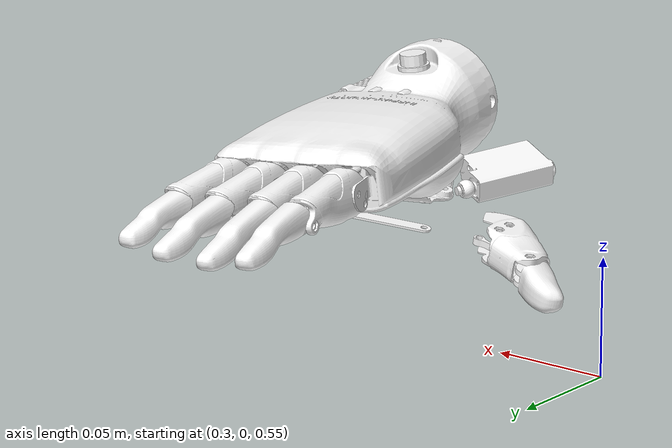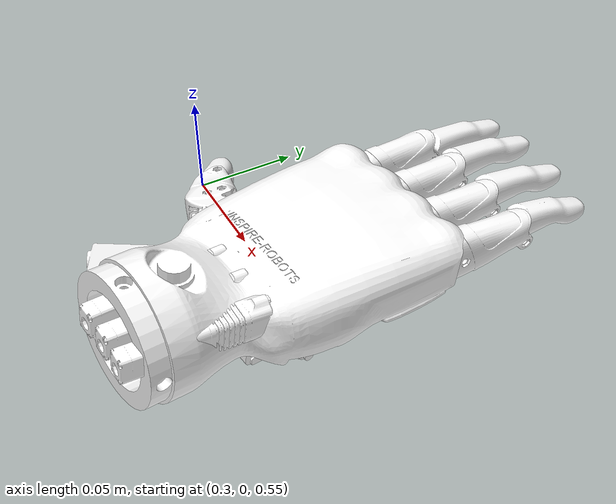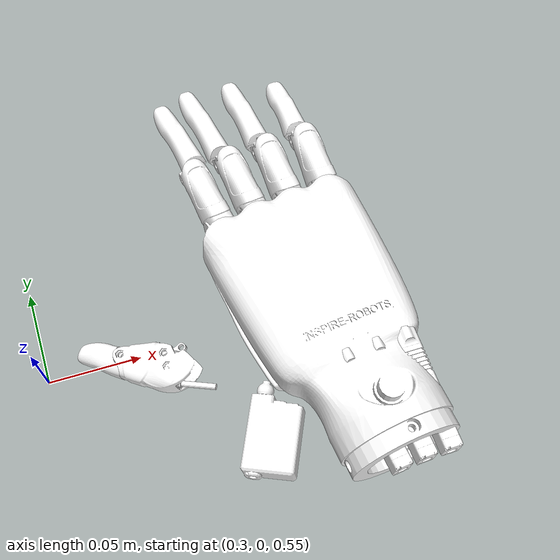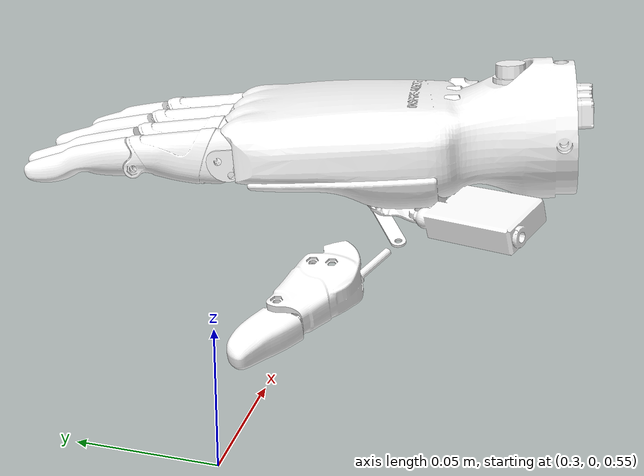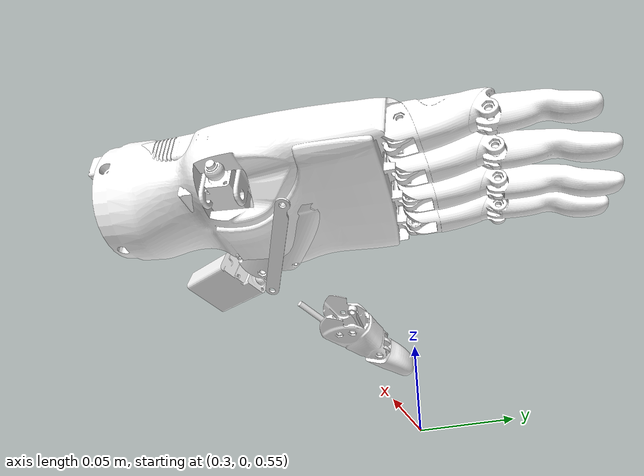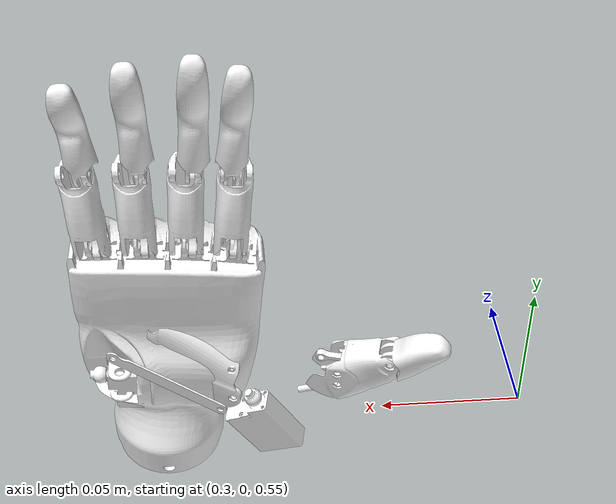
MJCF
<mujoco model="handright9253">

    <compiler angle="radian"/>
    <option integrator="RK4" timestep= "0.001" iterations="20" noslip_iterations="20"/>

    <size njmax="2000" nconmax="500" nstack="600000"/>

    <default class="main">
        <default class="D_Touch">
        <site size="0.009 0.004 0.013" group="4" type="box" rgba="0.8 0.8 0.8 0.15"/>
        </default>
        <default class="DC_Hand">
        <geom conaffinity="0" group="4" friction="1 0.5 0.01" margin="0.0005"/>
        </default>
        <default class="D_Vizual">
        <geom type="mesh" contype="0" conaffinity="0" group="1" friction="1 0.5 0.01" margin="0.0005"/>
        </default>
    </default>

    <asset>
        <mesh name="base_link" file="../meshes/base_link.STL" />
        <mesh name="Link1" file="../meshes/Link1.STL" />
        <mesh name="Link2" file="../meshes/Link2.STL" />
        <mesh name="Link3" file="../meshes/Link3.STL" />
        <mesh name="Link4" file="../meshes/Link4.STL" />
        <mesh name="Link5" file="../meshes/Link5.STL" />
        <mesh name="Link11" file="../meshes/Link11.STL" />
        <mesh name="Link12" file="../meshes/Link12.STL" />
        <mesh name="Link13" file="../meshes/Link13.STL" />
        <mesh name="Link14" file="../meshes/Link14.STL" />
        <mesh name="Link15" file="../meshes/Link15.STL" />
        <mesh name="Link21" file="../meshes/Link21.STL" />
        <mesh name="Link22" file="../meshes/Link22.STL" />
        <mesh name="Link23" file="../meshes/Link23.STL" />
        <mesh name="Link24" file="../meshes/Link24.STL" />
        <mesh name="Link25" file="../meshes/Link25.STL" />
        <mesh name="Link31" file="../meshes/Link31.STL" />
        <mesh name="Link32" file="../meshes/Link32.STL" />
        <mesh name="Link33" file="../meshes/Link33.STL" />
        <mesh name="Link34" file="../meshes/Link34.STL" />
        <mesh name="Link35" file="../meshes/Link35.STL" />
        <mesh name="Link41" file="../meshes/Link41.STL" />
        <mesh name="Link42" file="../meshes/Link42.STL" />
        <mesh name="Link43" file="../meshes/Link43.STL" />
        <mesh name="Link44" file="../meshes/Link44.STL" />
        <mesh name="Link45" file="../meshes/Link45.STL" />
        <mesh name="Link46" file="../meshes/Link46.STL" />
        <mesh name="Link47" file="../meshes/Link47.STL" />
        <mesh name="Link48" file="../meshes/Link48.STL" />
        <mesh name="Link49" file="../meshes/Link49.STL" />
        <mesh name="Link50" file="../meshes/Link50.STL" />
    </asset>
    <worldbody>
        <body name="hand" pos="0 -0.7 0.2" quat="0.527628 -0.499842 -0.538306 -0.427051">
            <inertial pos="0.001 -0.002 0.29" quat="0.982037 -0.0160006 0 -0.188007" mass="4" diaginertia="0.01 0.01 0.0075"/>
            <joint name="ARTx" pos="0 0 0" axis="0 1 0" type="slide" range="-0.25 0.25" damping="20" limited="true"
                    margin="0.01" armature="0.001" frictionloss="0.001"/>
            <joint name="ARTy" pos="0 0 0" axis="-1 0 0" type="slide" range="0 0.2" damping="20" limited="true" margin="0.01"
                    armature="0.001" frictionloss="0.001"/>
            <joint name="ARTz" pos="0 0 0" axis="0 0 1" type="slide" range="-0.3 0.5" damping="20" limited="true"
                    margin="0.01" armature="0.001" frictionloss="0.001"/>
             <joint name="ARRx" pos="0 0 0" axis="0 1 0" range="-0.75 0.75" damping="20" limited="true" margin="0.01"
                    armature="0.001" frictionloss="0.001"/>
            <joint name="ARRy" pos="0 0 0" axis="-1 0 0" range="-0.75 0.75" damping="20" limited="true" margin="0.01"
                    armature="0.001" frictionloss="0.001"/>
            <joint name="ARRz" pos="0 0 0" axis="0 0 1" range="-0.75 0.75" damping="20" limited="true" margin="0.01"
                    armature="0.001" frictionloss="0.001"/>
            <geom name="V_base_link" class="D_Vizual" pos="0.5 0.5 0.5" quat="0.707107 -0.707107 0 0" type="mesh" contype="0" conaffinity="0" group="1" rgba="1 1 1 1" mesh="base_link" />
            <geom name="C_base_link" class="DC_Hand" pos="0.5 0.5 0.5" quat="0.707107 -0.707107 0 0" type="mesh" rgba="1 1 1 1" mesh="base_link" />

            <site name="S_grasp" pos="0.007 -0.05 0.07" quat="0.00863043 -0.595202 -0.00337281 -0.803523" size="0.01"
                    rgba="0 0 0 0"/>
            <site name="Tch_ffmetacarpal" class="D_Touch" pos="0.033 -0.008 0.078" size="0.009 0.004 0.006"/>
            <site name="Tch_mfmetacarpal" class="D_Touch" pos="0.011 -0.008 0.074" size="0.009 0.004 0.014"/>
            <site name="Tch_rfmetacarpal" class="D_Touch" pos="-0.011 -0.008 0.068" size="0.009 0.004 0.016"/>
            <site name="Tch_thmetacarpal" class="D_Touch" pos="0.006 -0.008 0.042" quat="0.959662 0 0.281157 0"
                    size="0.008 0.004 0.015"/>
            <site name="Tch_palm" class="D_Touch" pos="-0.017 -0.008 0.024" quat="0.877583 0 -0.479426 0"
                    size="0.012 0.004 0.016"/>

            <body name="Link1" pos="0.50629 0.47654 0.556236" quat="0.71934 -0.694658 0 0">
                <inertial pos="-0.0017642 -0.028543 -2.2385e-07" quat="0.507422 0.492537 -0.507362 0.492457" mass="0.0069755" diaginertia="2.0272e-06 1.99544e-06 1.46269e-07" />
                <joint name="joint01" pos="0 0 0" axis="0 0 -1" limited="true" range="-0.05 0.05"/>
                <geom name="V_Link1" class="D_Vizual" type="mesh" contype="0" conaffinity="0" group="1" rgba="1 1 1 1" mesh="Link1" />
                <geom name="C_Link1" class="DC_Hand" type="mesh" rgba="1 1 1 1" mesh="Link1" />

                <body name="Link2" pos="-0.0010813 -0.050714 0" quat="0.682724 -0.678647 0.198594 0.184083">
                    <inertial pos="-1.6261e-10 2.3732e-10 -0.011292" quat="0.870643 0 0 0.491915" mass="0.00030666" diaginertia="1.44831e-08 1.44489e-08 6.5358e-10" />
                    <joint name="joint12" pos="0 0 0" axis="0 0 -1" type="slide" limited="true" range="0 0.01" />
                    <geom name="V_Link2" class="D_Vizual" type="mesh" contype="0" conaffinity="0" group="1" rgba="1 1 1 1" mesh="Link2" />
                    <geom name="C_Link2" class="DC_Hand" type="mesh" rgba="1 1 1 1" mesh="Link2" />
                    <body name="Link3" pos="0.00046892 0.00076819 -0.0244" quat="0.184097 -0.198609 -0.678643 0.68272">
                        <inertial pos="0.0031774 0.017383 0.00090008" quat="0.491211 0.50867 -0.491172 0.508643" mass="0.0042403" diaginertia="6.9398e-07 6.62871e-07 2.10909e-07" />
                        <joint name="joint23" pos="0 0 0" axis="0 0 -1" limited="true" range="0 1.7" />
                        <geom name="V_Link3" class="D_Vizual" type="mesh" contype="0" conaffinity="0" group="1" rgba="1 1 1 1" mesh="Link3" />
                        <geom name="C_Link3" class="DC_Hand" type="mesh" rgba="1 1 1 1" mesh="Link3" />
                        <site name="S_index_bottom" pos="0 0 0.026" group="3" size="0.005 0 0" rgba="0.4 0.9 0.4 1"/>
                        <site name="Tch_index_botom" class="D_Touch" pos="0 -0.004 0.018"/>

                        <body name="Link4" pos="0.0070171 0.037468 -0.00215">
                            <inertial pos="-0.0019697 0.019589 0.00305" quat="0.531152 0.466773 -0.531153 0.466773" mass="0.0045683" diaginertia="7.8179e-07 7.72465e-07 8.47212e-08" />
                            <joint name="joint34" pos="0 0 0" axis="0 0 1" limited="true" range="-1.7 0" />
                            <geom name="V_Link4" class="D_Vizual" type="mesh" contype="0" conaffinity="0" group="1" rgba="1 1 1 1" mesh="Link4" />
                            <geom name="C_Link4" class="DC_Hand" type="mesh" rgba="1 1 1 1" mesh="Link4" />
                            <site name="S_index_tip" pos="0 0 0.026" group="3" size="0.005 0 0" rgba="0.4 0.9 0.4 1"/>
                            <site name="Tch_index_tip" class="D_Touch" pos="0 -0.004 0.018"/>

                        </body>
                    </body>
                </body>
            </body>
            <body name="Link5" pos="0.49454 0.469899 0.63178" quat="-2.55162e-06 2.64228e-06 0.694658 0.71934">
                <inertial pos="-0.0038588 0.015743 0.004" quat="0.436222 0.556516 -0.436222 0.556516" mass="0.00031561" diaginertia="5.1996e-08 5.16538e-08 7.84769e-10" />
                <joint name="joint05" pos="0 0 0" axis="0 0 1" limited="true" range="-2 0" />
                <geom name="V_Link5" class="D_Vizual" type="mesh" contype="0" conaffinity="0" group="1" rgba="1 1 1 1" mesh="Link5" />
                <geom name="C_Link5" class="DC_Hand" type="mesh" rgba="1 1 1 1" mesh="Link5" />

            </body>

            <body name="Link11" pos="0.50629 0.49305 0.55655" quat="0.707107 -0.707107 0 0">
                <inertial pos="-0.0017767 -0.028542 -2.303e-07" quat="0.507528 0.492423 -0.507473 0.492347" mass="0.0069755" diaginertia="2.0272e-06 1.99539e-06 1.4627e-07" />
                <joint name="joint011" pos="0 0 0" axis="0 0 -1" limited="true" range="-0.05 0.05" />
                <geom name="V_Link11" class="D_Vizual" type="mesh" contype="0" conaffinity="0" group="1" rgba="1 1 1 1" mesh="Link11" />
                <geom name="C_Link11" class="DC_Hand" type="mesh" rgba="1 1 1 1" mesh="Link11" />
                <body name="Link12" pos="-0.0011031 -0.050343 -0.018279" quat="0.51396 -0.485639 0.496704 0.503275">
                    <inertial pos="-0.018674 6.5223e-06 -0.010992" quat="0.999848 0 0.0174488 0" mass="0.00030666" diaginertia="1.44828e-08 1.4449e-08 6.53583e-10" />
                    <joint name="joint1112" pos="0 0 0" axis="0 0 -1" type="slide" limited="true" range="0 0.01" />
                    <geom name="V_Link12" class="D_Vizual" type="mesh" contype="0" conaffinity="0" group="1" rgba="1 1 1 1" mesh="Link12" />
                    <geom name="C_Link12" class="DC_Hand" type="mesh" rgba="1 1 1 1" mesh="Link12" />
                    <body name="Link13" pos="-0.018232 0 -0.024124" quat="0.503273 -0.496704 -0.485639 0.513962">
                        <inertial pos="0.0030737 0.017402 0.00090013" quat="0.489693 0.510131 -0.489653 0.510105" mass="0.0042403" diaginertia="6.9397e-07 6.62865e-07 2.10915e-07" />
                        <joint name="joint1213" pos="0 0 0" axis="0 0 -1" limited="true" range="0 1.7" />
                        <geom name="V_Link13" class="D_Vizual" type="mesh" contype="0" conaffinity="0" group="1" rgba="1 1 1 1" mesh="Link13" />
                        <geom name="C_Link13" class="DC_Hand" type="mesh" rgba="1 1 1 1" mesh="Link13" />
                        <site name="S_middle_bottom" pos="0 0 0.026" group="3" size="0.005 0 0" rgba="0.4 0.9 0.4 1"/>
                        <site name="Tch_middle_botom" class="D_Touch" pos="0 -0.004 0.018"/>

                        <body name="Link14" pos="0.0067937 0.037509 -0.00215">
                            <inertial pos="-0.001921 0.020796 0.00305" quat="0.531626 0.466147 -0.531705 0.466229" mass="0.0050396" diaginertia="9.8384e-07 9.73279e-07 9.14014e-08" />
                            <joint name="joint1314" pos="0 0 0" axis="0 0 -1" limited="true" range="0 1.7" />
                            <geom name="V_Link14" class="D_Vizual" type="mesh" contype="0" conaffinity="0" group="1" rgba="1 1 1 1" mesh="Link14" />
                            <geom name="C_Link14" class="DC_Hand" type="mesh" rgba="1 1 1 1" mesh="Link14" />
                            <site name="S_middle_tip" pos="0 0 0.026" group="3" size="0.005 0 0" rgba="0.4 0.9 0.4 1"/>
                            <site name="Tch_middle_tip" class="D_Touch" pos="0 -0.004 0.018"/>

                        </body>
                    </body>
                </body>
            </body>
            <body name="Link15" pos="0.49454 0.48905 0.63228" quat="-2.59735e-06 2.59735e-06 0.707107 0.707107">
                <inertial pos="-0.0039265 0.015726 0.004" quat="0.43502 0.557456 -0.43502 0.557456" mass="0.00031561" diaginertia="5.1996e-08 5.16535e-08 7.84516e-10" />
                <joint name="joint015" pos="0 0 0" axis="0 0 1" limited="true" range="-2 0" />
                <geom name="V_Link15" class="D_Vizual" type="mesh" contype="0" conaffinity="0" group="1" rgba="1 1 1 1" mesh="Link15" />
                <geom name="C_Link15" class="DC_Hand" type="mesh" rgba="1 1 1 1" mesh="Link15" />
            </body>
            <body name="Link21" pos="0.50629 0.508063 0.556157" quat="0.688355 -0.725374 0 0">
                <inertial pos="-0.0017767 -0.028542 -2.2887e-07" quat="0.507528 0.492423 -0.507473 0.492347" mass="0.0069755" diaginertia="2.0272e-06 1.99539e-06 1.4627e-07" />
                <joint name="joint021" pos="0 0 0" axis="0 0 1" limited="true" range="-0.05 0.05" />
                <geom name="V_Link21" class="D_Vizual" type="mesh" contype="0" conaffinity="0" group="1" rgba="1 1 1 1" mesh="Link21" />
                <geom name="C_Link21" class="DC_Hand" type="mesh" rgba="1 1 1 1" mesh="Link21" />
                <body name="Link22" pos="-0.0011031 -0.050688 0" quat="0.505148 -0.494244 0.50569 0.494798">
                    <inertial pos="7.7552e-11 1.8671e-10 -0.011292" mass="0.00030666" diaginertia="1.4483e-08 1.4449e-08 6.5358e-10" />
                    <joint name="joint2122" pos="0 0 0" axis="0 0 -1" type="slide" limited="true" range="0 0.01" />
                    <geom name="V_Link22" class="D_Vizual" type="mesh" contype="0" conaffinity="0" group="1" rgba="1 1 1 1" mesh="Link22" />
                    <geom name="C_Link22" class="DC_Hand" type="mesh" rgba="1 1 1 1" mesh="Link22" />
                    <body name="Link23" pos="0.0009 0 -0.0244" quat="0.494807 -0.505682 -0.494255 0.505138">
                        <inertial pos="0.0030737 0.017402 0.00090015" quat="0.489691 0.510129 -0.489655 0.510107" mass="0.0042403" diaginertia="6.9397e-07 6.62865e-07 2.10915e-07" />
                        <joint name="joint2223" pos="0 0 0" axis="0 0 -1" limited="true" range="0 1.7" />
                        <geom name="V_Link23" class="D_Vizual" type="mesh" contype="0" conaffinity="0" group="1" rgba="1 1 1 1" mesh="Link23" />
                        <geom name="C_Link23" class="DC_Hand" type="mesh" rgba="1 1 1 1" mesh="Link23" />
                        <site name="S_ring_bottom" pos="0 0 0.026" group="3" size="0.005 0 0" rgba="0.4 0.9 0.4 1"/>
                        <site name="Tch_ring_botom" class="D_Touch" pos="0 -0.004 0.018"/>

                        <body name="Link24" pos="0.0067937 0.037509 -0.00215">
                            <inertial pos="-0.0021753 0.019567 0.00305" quat="0.528695 0.469554 -0.528695 0.469554" mass="0.0045683" diaginertia="7.8177e-07 7.72448e-07 8.4722e-08" />
                            <joint name="joint2324" pos="0 0 0" axis="0 0 1" limited="true" range="-1.7 0" />
                            <geom name="V_Link24" class="D_Vizual" type="mesh" contype="0" conaffinity="0" group="1" rgba="1 1 1 1" mesh="Link24" />
                            <geom name="C_Link24" class="DC_Hand" type="mesh" rgba="1 1 1 1" mesh="Link24" />
                            <site name="S_ring_tip" pos="0 0 0.026" group="3" size="0.005 0 0" rgba="0.4 0.9 0.4 1"/>
                            <site name="Tch_ring_tip" class="D_Touch" pos="0 -0.004 0.018"/>

                        </body>
                    </body>
                </body>
            </body>
            <body name="Link25" pos="0.49454 0.508032 0.63199" quat="-2.66445e-06 2.52847e-06 -0.725374 -0.688355">
                <inertial pos="-0.0039265 0.015726 0.004" quat="0.43502 0.557456 -0.43502 0.557456" mass="0.00031561" diaginertia="5.1996e-08 5.16535e-08 7.84516e-10" />
                <joint name="joint025" pos="0 0 0" axis="0 0 1" limited="true" range="-2 0" />
                <geom name="V_Link25" class="D_Vizual" type="mesh" contype="0" conaffinity="0" group="1" rgba="1 1 1 1" mesh="Link25" />
                <geom name="C_Link25" class="DC_Hand" type="mesh" rgba="1 1 1 1" mesh="Link25" />
            </body>
            <body name="Link31" pos="0.50629 0.523035 0.554979" quat="0.669131 -0.743145 0 0">
                <inertial pos="-0.0017767 -0.028542 -2.2872e-07" quat="0.507528 0.492423 -0.507474 0.492348" mass="0.0069755" diaginertia="2.0272e-06 1.99539e-06 1.4627e-07" />
                <joint name="joint031" pos="0 0 0" axis="0 0 1" limited="true" range="-0.05 0.05" />
                <geom name="V_Link31" class="D_Vizual" type="mesh" contype="0" conaffinity="0" group="1" rgba="1 1 1 1" mesh="Link31" />
                <geom name="C_Link31" class="DC_Hand" type="mesh" rgba="1 1 1 1" mesh="Link31" />
                <body name="Link32" pos="-0.0011031 -0.050688 0" quat="0.504851 -0.493941 0.505987 0.495101">
                    <inertial pos="2.6333e-10 5.3616e-10 -0.011292" mass="0.00030666" diaginertia="1.4483e-08 1.4449e-08 6.5358e-10" />
                    <joint name="joint3132" pos="0 0 0" axis="0 0 -1" type="slide" limited="true" range="0 0.01" />
                    <geom name="V_Link32" class="D_Vizual" type="mesh" contype="0" conaffinity="0" group="1" rgba="1 1 1 1" mesh="Link32" />
                    <geom name="C_Link32" class="DC_Hand" type="mesh" rgba="1 1 1 1" mesh="Link32" />
                    <body name="Link33" pos="0.0009 0 -0.0244" quat="0.49511 -0.505978 -0.493951 0.504841">
                        <inertial pos="0.0030737 0.017402 0.00090014" quat="0.489692 0.510129 -0.489654 0.510107" mass="0.0042403" diaginertia="6.9398e-07 6.62865e-07 2.10915e-07" />
                        <joint name="joint3233" pos="0 0 0" axis="0 0 1" limited="true" range="-1.7 0" />
                        <geom name="V_Link33" class="D_Vizual" type="mesh" contype="0" conaffinity="0" group="1" rgba="1 1 1 1" mesh="Link33" />
                        <geom name="C_Link33" class="DC_Hand" type="mesh" rgba="1 1 1 1" mesh="Link33" />
                        <site name="S_pinky_bottom" pos="0 0 0.026" group="3" size="0.005 0 0" rgba="0.4 0.9 0.4 1"/>
                        <site name="Tch_pinky_botom" class="D_Touch" pos="0 -0.004 0.018"/>

                        <body name="Link34" pos="0.0067937 0.037509 -0.00215">
                            <inertial pos="-0.0024748 0.016203 0.0030531" quat="0.528862 0.47398 -0.524799 0.469291" mass="0.0035996" diaginertia="4.4867e-07 4.43723e-07 6.56538e-08" />
                            <joint name="joint3334" pos="0 0 0" axis="0 0 -1" limited="true" range="0 1.7" />
                            <geom name="V_Link34" class="D_Vizual" type="mesh" contype="0" conaffinity="0" group="1" rgba="1 1 1 1" mesh="Link34" />
                            <geom name="C_Link34" class="DC_Hand" type="mesh" rgba="1 1 1 1" mesh="Link34" />
                            <site name="S_pinky_tip" pos="0 0 0.026" group="3" size="0.005 0 0" rgba="0.4 0.9 0.4 1"/>
                            <site name="Tch_pinky_tip" class="D_Touch" pos="0 -0.004 0.018"/>

                        </body>
                    </body>
                </body>
            </body>
            <body name="Link35" pos="0.49454 0.526973 0.63071" quat="-2.72972e-06 2.45785e-06 -0.743145 -0.669131">
                <inertial pos="-0.0039265 0.015726 0.004" quat="0.43502 0.557456 -0.43502 0.557456" mass="0.00031561" diaginertia="5.1996e-08 5.16535e-08 7.84516e-10" />
                <joint name="joint035" pos="0 0 0" axis="0 0 1" limited="true" range="-2 0" />
                <geom name="V_Link35" class="D_Vizual" type="mesh" contype="0" conaffinity="0" group="1" rgba="1 1 1 1" mesh="Link35" />
                <geom name="C_Link35" class="DC_Hand" type="mesh" rgba="1 1 1 1" mesh="Link35" />
            </body>
            <body name="Link41" pos="0.48904 0.52985 0.56025" quat="-0.00447519 3.68133e-06 1.86642e-06 -0.99999">
                <inertial pos="3.252e-10 0.022007 0.0065979" quat="0.652791 0.757538 0 0" mass="0.0092961" diaginertia="1.5208e-06 1.15609e-06 5.42407e-07" />
                <joint name="joint041" pos="0 0 0" axis="0 0 -1" limited="true" range="-0.02 0.02" />
                <geom name="V_Link41" class="D_Vizual" type="mesh" contype="0" conaffinity="0" group="1" rgba="1 1 1 1" mesh="Link41" />
                <geom name="C_Link41" class="DC_Hand" type="mesh" rgba="1 1 1 1" mesh="Link41" />
                <body name="Link42" pos="0 0.027687 0" quat="0.707105 0.707108 0 0">
                    <inertial pos="5.0532e-09 -1.4449e-09 -0.011425" quat="0.707107 0 0 0.707107" mass="0.00016153" diaginertia="7.177e-09 7.1494e-09 2.337e-10" />
                    <joint name="joint4142" pos="0 0 0" axis="0 0 -1" type="slide" limited="true" range="0 0.01" />
                    <geom name="V_Link42" class="D_Vizual" type="mesh" contype="0" conaffinity="0" group="1" rgba="1 1 1 1" mesh="Link42" />
                    <geom name="C_Link42" class="DC_Hand" type="mesh" rgba="1 1 1 1" mesh="Link42" />
                    <body name="Link43" pos="0 -0.0026 -0.01955" quat="0.502243 -0.502245 -0.497745 -0.497747">
                        <inertial pos="-0.0078715 0.0065154 0.00388" quat="0.515015 0.680854 0.408023 0.323596" mass="0.0018869" diaginertia="8.66026e-08 6.8732e-08 4.94194e-08" />
                        <joint name="joint4243" pos="0 0 0" axis="0 0 -1" limited="true" range="0 1.2" />
                        <geom name="V_Link43" class="D_Vizual" type="mesh" contype="0" conaffinity="0" group="1" rgba="1 1 1 1" mesh="Link43" />
                        <geom name="C_Link43" class="DC_Hand" type="mesh" rgba="1 1 1 1" mesh="Link43" />
                        <body name="Link44" pos="-0.012782 0.013348 0.0022" quat="0.0996843 0.0996847 0.700046 0.700044">
                            <inertial pos="0.021932 0.012785 -0.0047886" quat="-0.254484 0.660712 0.251903 0.659729" mass="0.0066075" diaginertia="2.78601e-06 2.43937e-06 8.64621e-07" />
                            <joint name="joint4344" pos="0 0 0" axis="0 0 -1" limited="true" range="-0.5 0" />
                            <geom name="V_Link44" class="D_Vizual" type="mesh" contype="0" conaffinity="0" group="1" rgba="1 1 1 1" mesh="Link44" />
                            <geom name="C_Link44" class="DC_Hand" type="mesh" rgba="1 1 1 1" mesh="Link44" />
                            <body name="Link45" pos="0.0083049 -0.0034513 -0.00475" quat="0.0744546 -0.956966 -0.279641 0.0217568">
                                <inertial pos="0.02194 -0.0065438 0.0010242" quat="0.107453 0.698894 0.00189293 0.707105" mass="0.0092256" diaginertia="1.50626e-06 1.14509e-06 5.37422e-07" />
                                <joint name="joint4445" pos="0 0 0" axis="0 -0.15464 -0.987971" limited="true" range="0 0.4" />
                                <geom name="V_Link45" class="D_Vizual" type="mesh" contype="0" conaffinity="0" group="1" rgba="1 1 1 1" mesh="Link45" />
                                <geom name="C_Link45" class="DC_Hand" type="mesh" rgba="1 1 1 1" mesh="Link45" />
                                <body name="Link46" pos="0.02428 0 0" quat="0.0548478 0.704976 -0.054853 -0.704976">
                                    <inertial pos="0 0 -0.01215" mass="0.00017549" diaginertia="8.3803e-09 8.3341e-09 2.4208e-10" />
                                    <joint name="joint4546" pos="0 0 0" axis="0 0 -1" type="slide" limited="true" range="0 0.01" />
                                    <geom name="V_Link46" class="D_Vizual" type="mesh" contype="0" conaffinity="0" group="1" rgba="1 1 1 1" mesh="Link46" />
                                    <geom name="C_Link46" class="DC_Hand" type="mesh" rgba="1 1 1 1" mesh="Link46" />
                                    <body name="Link47" pos="0.001 0 -0.0223" quat="0.678722 -0.198332 -0.678723 0.198332">
                                        <inertial pos="-0.0060688 0.011295 0.00099972" quat="0.307389 0.636718 -0.307548 0.636802" mass="0.0037847" diaginertia="4.6531e-07 4.48089e-07 2.45661e-07" />
                                        <joint name="joint4647" pos="0 0 0" axis="0 0 -1" limited="true" range="0 0.8" />
                                        <geom name="V_Link47" class="D_Vizual" type="mesh" contype="0" conaffinity="0" group="1" rgba="1 1 1 1" mesh="Link47" />
                                        <geom name="C_Link47" class="DC_Hand" type="mesh" rgba="1 1 1 1" mesh="Link47" />
                                        <body name="Link48" pos="-0.016763 0.023079 -0.00255">
                                            <inertial pos="-0.0092888 0.0049529 0.0035533" quat="0.266292 0.655966 -0.262808 0.655537" mass="0.0033441" diaginertia="2.0026e-07 1.95247e-07 8.1593e-08" />
                                            <joint name="joint4748" pos="0 0 0" axis="0 0 -1" limited="true" range="0 1.2" />
                                            <geom name="V_Link48" class="D_Vizual" type="mesh" contype="0" conaffinity="0" group="1" rgba="1 1 1 1" mesh="Link48" />
                                            <geom name="C_Link48" class="DC_Hand" type="mesh" rgba="1 1 1 1" mesh="Link48" />
                                        </body>
                                    </body>
                                </body>
                            </body>
                            <body name="Link49" pos="0.036109 0.035336 -0.0033" quat="1.34924e-11 -3.67321e-06 -1 3.67321e-06">
                                <inertial pos="-0.017737 0.0022319 0.00145" quat="0.040459 0.705948 -0.040459 0.705948" mass="0.00021109" diaginertia="2.5965e-08 2.57946e-08 4.66787e-10" />
                                <joint name="joint4449" pos="0 0 0" axis="0 0 -1" limited="true" range="0 1" />
                                <geom name="V_Link49" class="D_Vizual" type="mesh" contype="0" conaffinity="0" group="1" rgba="1 1 1 1" mesh="Link49" />
                                <geom name="C_Link49" class="DC_Hand" type="mesh" rgba="1 1 1 1" mesh="Link49" />
                            </body>
                        </body>
                        <body name="Link50" pos="-0.010085 0.014283 0.010893" quat="0.0996843 0.0996847 0.700046 0.700044">
                            <inertial pos="0.023451 0.0093386 -0.0005" quat="-0.132605 0.694562 0.132605 0.694562" mass="0.00031643" diaginertia="7.6534e-08 7.56136e-08 9.73438e-10" />
                            <joint name="joint4350" pos="0 0 0" axis="0 0 -1" limited="true" range="-1 0" />
                            <geom name="V_Link50" class="D_Vizual" type="mesh" contype="0" conaffinity="0" group="1" rgba="1 1 1 1" mesh="Link50" />
                            <geom name="C_Link50" class="DC_Hand" type="mesh" rgba="1 1 1 1" mesh="Link50" />
                        </body>
                    </body>
                </body>
            </body>
        </body>

    </worldbody>

    <contact>
        <pair geom1="C_base_link" geom2="C_Link4"  condim="1" />
        <pair geom1="C_base_link" geom2="C_Link5"  condim="1" />

        <pair geom1="C_base_link" geom2="C_Link14" condim="1" />
        <pair geom1="C_base_link" geom2="C_Link15" condim="1" />

        <pair geom1="C_base_link" geom2="C_Link24" condim="1" />
        <pair geom1="C_base_link" geom2="C_Link25" condim="1" />

        <pair geom1="C_base_link" geom2="C_Link34" condim="1" />
        <pair geom1="C_base_link" geom2="C_Link35" condim="1" />

        <pair geom1="C_Link49" geom2="C_Link44"    condim="1" />
        <pair geom1="C_Link45" geom2="C_Link44"    condim="1" />

        <!-- Thumb colliding with fingers lower,middle and tip-->
        <pair geom1="C_Link44" geom2="C_Link4"     condim="1" />
        <pair geom1="C_Link44" geom2="C_Link14"    condim="1" />
        <pair geom1="C_Link44" geom2="C_Link24"    condim="1" />
        <pair geom1="C_Link44" geom2="C_Link34"    condim="1" />

        <pair geom1="C_Link47" geom2="C_Link4"     condim="1" />
        <pair geom1="C_Link47" geom2="C_Link14"    condim="1" />
        <pair geom1="C_Link47" geom2="C_Link24"    condim="1" />
        <pair geom1="C_Link47" geom2="C_Link34"    condim="1" />

        <pair geom1="C_Link48" geom2="C_Link4"     condim="1" />
        <pair geom1="C_Link48" geom2="C_Link14"    condim="1" />
        <pair geom1="C_Link48" geom2="C_Link24"    condim="1" />
        <pair geom1="C_Link48" geom2="C_Link34"    condim="1" />

        <pair geom1="C_Link48" geom2="C_Link3"     condim="1" />
        <pair geom1="C_Link48" geom2="C_Link13"    condim="1" />
        <pair geom1="C_Link48" geom2="C_Link23"    condim="1" />
        <pair geom1="C_Link48" geom2="C_Link33"    condim="1" />

        <pair geom1="C_Link48" geom2="C_base_link"    condim="1" />
    </contact>

    <equality>
        <weld body1="Link5" body2="Link3"  active="true"/>
        <weld body1="Link15" body2="Link13"/>
        <weld body1="Link25" body2="Link23"/>
        <weld body1="Link35" body2="Link33"/>
        <weld body1="Link45" body2="Link44"/>
        <weld body1="Link49" body2="Link47"/>
        <weld body1="Link50" body2="Link44"/>
        <weld body1="Link41" body2="hand"/>
    </equality>

    <tendon>

        <fixed name="T_indexc" range="-0.01 0.01" limited="true">
            <joint joint="joint01" coef="0.00705"/>
            <joint joint="joint34" coef="-0.00805"/>
        </fixed>
        <fixed name="T_indexu" range="-0.007 0.03" user="1200" limited="true" >
            <joint joint="joint01" coef="0.00705"/>
            <joint joint="joint34" coef="0.00805"/>
        </fixed>
        <fixed name="T_indexd" range="-0.03 0.007" user="1201" limited="true" >
            <joint joint="joint01" coef="-0.00705"/>
            <joint joint="joint34" coef="-0.00805"/>
        </fixed>

    </tendon>

    <actuator>

        <general biasprm="0 -200 0 0 0 0 0 0 0 0" biastype="affine" ctrllimited="true" ctrlrange="-50 0.25"
                gainprm="50 0 0 0 0 0 0 0 0 0" joint="ARTx" name="A_ARTx"
                user="0 1 0.03 0.0939711 0.513477 0.0358776 1.23598 8.40409 0.485031 6.04244 1.02187 0.175297 0.121642 0 0 0"/>
        <general biasprm="0 -200 0 0 0 0 0 0 0 0" biastype="affine" ctrllimited="true" ctrlrange="30 60"
                gainprm="50 0 0 0 0 0 0 0 0 0" joint="ARTy" name="A_ARTy"
                user="0 1 0.03 0.0939711 0.513477 0.0358776 1.23598 8.40409 0.485031 6.04244 1.02187 0.175297 0.121642 0 0 0"/>
        <general biasprm="0 -200 0 0 0 0 0 0 0 0" biastype="affine" ctrllimited="true" ctrlrange="-0.3 0.5"
                gainprm="50 0 0 0 0 0 0 0 0 0" joint="ARTz" name="A_ARTz"
                user="0 1 0.03 0.0939711 0.513477 0.0358776 1.23598 8.40409 0.485031 6.04244 1.02187 0.175297 0.121642 0 0 0"/>

        <general biasprm="0 -200 0 0 0 0 0 0 0 0" biastype="affine" ctrllimited="true" ctrlrange="-0.75 0.75"
                gainprm="50 0 0 0 0 0 0 0 0 0" joint="ARRx" name="A_ARRx"
                user="0 1 0.03 0.0939711 0.513477 0.0358776 1.23598 8.40409 0.485031 6.04244 1.02187 0.175297 0.121642 0 0 0"/>
        <general biasprm="0 -200 0 0 0 0 0 0 0 0" biastype="affine" ctrllimited="true" ctrlrange="-0.8 1"
                gainprm="50 0 0 0 0 0 0 0 0 0" joint="ARRy" name="A_ARRy"
                user="0 1 0.03 0.0939711 0.513477 0.0358776 1.23598 8.40409 0.485031 6.04244 1.02187 0.175297 0.121642 0 0 0"/>
        <general biasprm="0 -200 0 0 0 0 0 0 0 0" biastype="affine" ctrllimited="true" ctrlrange="-0.75 0.75"
                gainprm="50 0 0 0 0 0 0 0 0 0" joint="ARRz" name="A_ARRz"
                user="0 1 0.03 0.0939711 0.513477 0.0358776 1.23598 8.40409 0.485031 6.04244 1.02187 0.175297 0.121642 0 0 0"/>

        <general biasprm="0 -1 0 0 0 0 0 0 0 0" biastype="affine" name="index"    joint="joint12"   ctrllimited="true" ctrlrange="-1 1"
                user="1002 0 2001 -0.1 0.1 0 0 0 0 0 0 0 0 0 0 0"/>
        <general biasprm="0 -1 0 0 0 0 0 0 0 0" biastype="affine" name="middle"   joint="joint1112" ctrllimited="true" ctrlrange="-1 1"
                user="1002 0 2001 -0.1 0.1 0 0 0 0 0 0 0 0 0 0 0"/>
        <general biasprm="0 -1 0 0 0 0 0 0 0 0" biastype="affine" name="ring"     joint="joint2122" ctrllimited="true" ctrlrange="-1 1"
                user="1002 0 2001 -0.1 0.1 0 0 0 0 0 0 0 0 0 0 0"/>
        <general biasprm="0 -1 0 0 0 0 0 0 0 0" biastype="affine" name="pinky"    joint="joint3132" ctrllimited="true" ctrlrange="-1 1"
                user="1002 0 2001 -0.1 0.1 0 0 0 0 0 0 0 0 0 0 0"/>
        <general biasprm="0 -1 0 0 0 0 0 0 0 0" biastype="affine" name="t_rotate" joint="joint4243" ctrllimited="true" ctrlrange="-0.1 0.1"
                user="1002 0 2001 -0.1 0.1 0 0 0 0 0 0 0 0 0 0 0"/>
        <general biasprm="0 -1 0 0 0 0 0 0 0 0" biastype="affine" name="thumb"    joint="joint4546" ctrllimited="true" ctrlrange="-1 1"
                user="1002 0 2001 -0.1 0.1 0 0 0 0 0 0 0 0 0 0 0"/>

    </actuator>

</mujoco>
